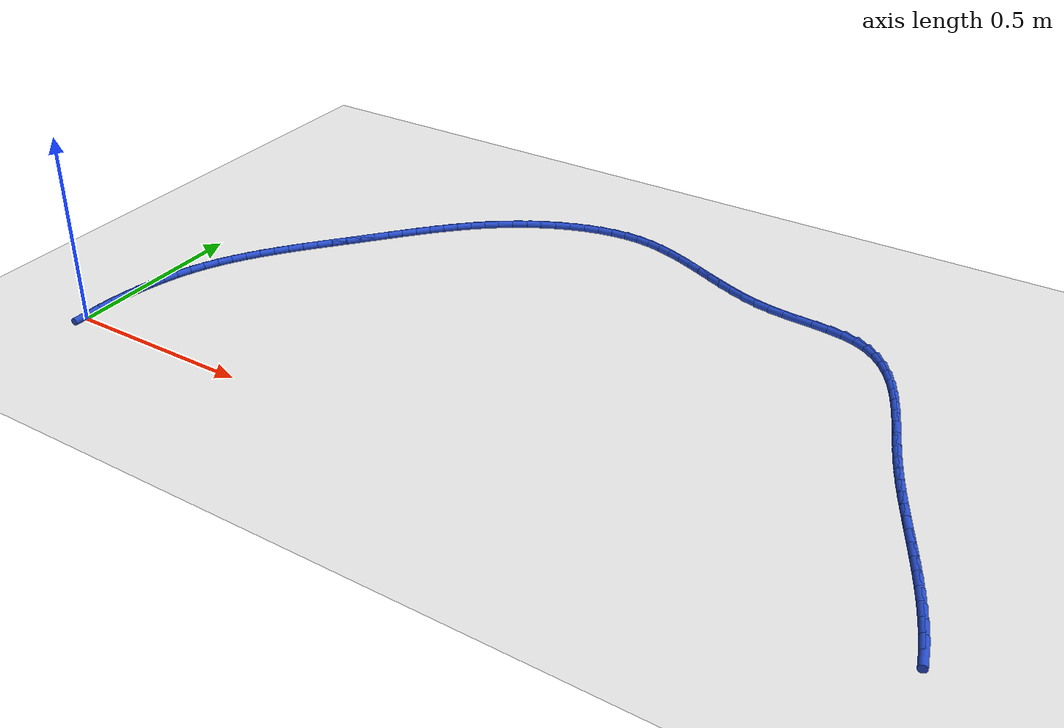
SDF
<sdf version="1.6">
 <world name="default">
  <model name="ground_plane">
   <static>1</static>
   <link name="link">
    <collision name="collision">
     <geometry><plane><normal>0 0 1</normal><size>100 100</size></plane></geometry>
     <surface><friction><ode><mu>100</mu><mu2>50</mu2></ode></friction></surface>
    </collision>
    <visual name="visual">
     <cast_shadows>0</cast_shadows>
     <geometry><plane><normal>0 0 1</normal><size>100 100</size></plane></geometry>
     <material>
      <script><uri>file://media/materials/scripts/gazebo.material</uri><name>Gazebo/WhiteGlow</name></script>
     </material>
    </visual>
   </link>
  </model>
  <model name="line">
   <link name="link_1">
    <pose>0.0005698389230910422 0.041545162783905173 0.01 0 1.57 1.5200972994835111</pose>
    <collision name="collision">
     <geometry><cylinder><radius>0.01</radius><length>0.08</length></cylinder></geometry>
    </collision>
    <visual name="visual">
     <material>
      <script><name>Gazebo/Blue</name><uri>file://media/materials/scripts/gazebo.material</uri></script>
     </material>
     <geometry><cylinder><radius>0.01</radius><length>0.08</length></cylinder></geometry>
    </visual>
   </link>
   <link name="link_2">
    <pose>0.0026732887614002825 0.08299856753516024 0.01 0 1.57 1.4808727191318776</pose>
    <collision name="collision">
     <geometry><cylinder><radius>0.01</radius><length>0.08</length></cylinder></geometry>
    </collision>
    <visual name="visual">
     <material>
      <script><name>Gazebo/Blue</name><uri>file://media/materials/scripts/gazebo.material</uri></script>
     </material>
     <geometry><cylinder><radius>0.01</radius><length>0.08</length></cylinder></geometry>
    </visual>
   </link>
   <link name="link_3">
    <pose>0.006391847719253517 0.12423946716694735 0.01 0 1.57 1.4391861110435986</pose>
    <collision name="collision">
     <geometry><cylinder><radius>0.01</radius><length>0.08</length></cylinder></geometry>
    </collision>
    <visual name="visual">
     <material>
      <script><name>Gazebo/Blue</name><uri>file://media/materials/scripts/gazebo.material</uri></script>
     </material>
     <geometry><cylinder><radius>0.01</radius><length>0.08</length></cylinder></geometry>
    </visual>
   </link>
   <link name="link_4">
    <pose>0.011807014000976564 0.1651471145924485 0.01 0 1.57 1.3948204671441984</pose>
    <collision name="collision">
     <geometry><cylinder><radius>0.01</radius><length>0.08</length></cylinder></geometry>
    </collision>
    <visual name="visual">
     <material>
      <script><name>Gazebo/Blue</name><uri>file://media/materials/scripts/gazebo.material</uri></script>
     </material>
     <geometry><cylinder><radius>0.01</radius><length>0.08</length></cylinder></geometry>
    </visual>
   </link>
   <link name="link_5">
    <pose>0.019000285810895218 0.20560076272484573 0.01 0 1.57 1.3475703724889114</pose>
    <collision name="collision">
     <geometry><cylinder><radius>0.01</radius><length>0.08</length></cylinder></geometry>
    </collision>
    <visual name="visual">
     <material>
      <script><name>Gazebo/Blue</name><uri>file://media/materials/scripts/gazebo.material</uri></script>
     </material>
     <geometry><cylinder><radius>0.01</radius><length>0.08</length></cylinder></geometry>
    </visual>
   </link>
   <link name="link_6">
    <pose>0.028053161353335274 0.24547966447732103 0.01 0 1.57 1.2972523128864661</pose>
    <collision name="collision">
     <geometry><cylinder><radius>0.01</radius><length>0.08</length></cylinder></geometry>
    </collision>
    <visual name="visual">
     <material>
      <script><name>Gazebo/Blue</name><uri>file://media/materials/scripts/gazebo.material</uri></script>
     </material>
     <geometry><cylinder><radius>0.01</radius><length>0.08</length></cylinder></geometry>
    </visual>
   </link>
   <link name="link_7">
    <pose>0.03904713883262256 0.28466307276305663 0.01 0 1.57 1.2437181974995577</pose>
    <collision name="collision">
     <geometry><cylinder><radius>0.01</radius><length>0.08</length></cylinder></geometry>
    </collision>
    <visual name="visual">
     <material>
      <script><name>Gazebo/Blue</name><uri>file://media/materials/scripts/gazebo.material</uri></script>
     </material>
     <geometry><cylinder><radius>0.01</radius><length>0.08</length></cylinder></geometry>
    </visual>
   </link>
   <link name="link_8">
    <pose>0.05206371645308286 0.32303024049523443 0.01 0 1.57 1.1868720875243683</pose>
    <collision name="collision">
     <geometry><cylinder><radius>0.01</radius><length>0.08</length></cylinder></geometry>
    </collision>
    <visual name="visual">
     <material>
      <script><name>Gazebo/Blue</name><uri>file://media/materials/scripts/gazebo.material</uri></script>
     </material>
     <geometry><cylinder><radius>0.01</radius><length>0.08</length></cylinder></geometry>
    </visual>
   </link>
   <link name="link_9">
    <pose>0.067184392419042 0.36046042058703653 0.01 0 1.57 1.1281532758197523</pose>
    <collision name="collision">
     <geometry><cylinder><radius>0.01</radius><length>0.08</length></cylinder></geometry>
    </collision>
    <visual name="visual">
     <material>
      <script><name>Gazebo/Blue</name><uri>file://media/materials/scripts/gazebo.material</uri></script>
     </material>
     <geometry><cylinder><radius>0.01</radius><length>0.08</length></cylinder></geometry>
    </visual>
   </link>
   <link name="link_10">
    <pose>0.08444208644708855 0.3968680285939213 0.01 0 1.57 1.0739623734600916</pose>
    <collision name="collision">
     <geometry><cylinder><radius>0.01</radius><length>0.08</length></cylinder></geometry>
    </collision>
    <visual name="visual">
     <material>
      <script><name>Gazebo/Blue</name><uri>file://media/materials/scripts/gazebo.material</uri></script>
     </material>
     <geometry><cylinder><radius>0.01</radius><length>0.08</length></cylinder></geometry>
    </visual>
   </link>
   <link name="link_11">
    <pose>0.10366266211209786 0.43231735384019665 0.01 0 1.57 1.0262000147101982</pose>
    <collision name="collision">
     <geometry><cylinder><radius>0.01</radius><length>0.08</length></cylinder></geometry>
    </collision>
    <visual name="visual">
     <material>
      <script><name>Gazebo/Blue</name><uri>file://media/materials/scripts/gazebo.material</uri></script>
     </material>
     <geometry><cylinder><radius>0.01</radius><length>0.08</length></cylinder></geometry>
    </visual>
   </link>
   <link name="link_12">
    <pose>0.12461682725414372 0.4669126091114115 0.01 0 1.57 0.9849473850095529</pose>
    <collision name="collision">
     <geometry><cylinder><radius>0.01</radius><length>0.08</length></cylinder></geometry>
    </collision>
    <visual name="visual">
     <material>
      <script><name>Gazebo/Blue</name><uri>file://media/materials/scripts/gazebo.material</uri></script>
     </material>
     <geometry><cylinder><radius>0.01</radius><length>0.08</length></cylinder></geometry>
    </visual>
   </link>
   <link name="link_13">
    <pose>0.1470752892221213 0.5007580075486453 0.01 0 1.57 0.9501609036371669</pose>
    <collision name="collision">
     <geometry><cylinder><radius>0.01</radius><length>0.08</length></cylinder></geometry>
    </collision>
    <visual name="visual">
     <material>
      <script><name>Gazebo/Blue</name><uri>file://media/materials/scripts/gazebo.material</uri></script>
     </material>
     <geometry><cylinder><radius>0.01</radius><length>0.08</length></cylinder></geometry>
    </visual>
   </link>
   <link name="link_14">
    <pose>0.17080875536492568 0.533957762292977 0.01 0 1.57 0.9217250289088585</pose>
    <collision name="collision">
     <geometry><cylinder><radius>0.01</radius><length>0.08</length></cylinder></geometry>
    </collision>
    <visual name="visual">
     <material>
      <script><name>Gazebo/Blue</name><uri>file://media/materials/scripts/gazebo.material</uri></script>
     </material>
     <geometry><cylinder><radius>0.01</radius><length>0.08</length></cylinder></geometry>
    </visual>
   </link>
   <link name="link_15">
    <pose>0.19558793303145225 0.5666160864854863 0.01 0 1.57 0.8994955455293171</pose>
    <collision name="collision">
     <geometry><cylinder><radius>0.01</radius><length>0.08</length></cylinder></geometry>
    </collision>
    <visual name="visual">
     <material>
      <script><name>Gazebo/Blue</name><uri>file://media/materials/scripts/gazebo.material</uri></script>
     </material>
     <geometry><cylinder><radius>0.01</radius><length>0.08</length></cylinder></geometry>
    </visual>
   </link>
   <link name="link_16">
    <pose>0.22118352957059623 0.5988371932672524 0.01 0 1.57 0.8833324995591779</pose>
    <collision name="collision">
     <geometry><cylinder><radius>0.01</radius><length>0.08</length></cylinder></geometry>
    </collision>
    <visual name="visual">
     <material>
      <script><name>Gazebo/Blue</name><uri>file://media/materials/scripts/gazebo.material</uri></script>
     </material>
     <geometry><cylinder><radius>0.01</radius><length>0.08</length></cylinder></geometry>
    </visual>
   </link>
   <link name="link_17">
    <pose>0.24736625233125267 0.6307252957793547 0.01 0 1.57 0.8731237472667347</pose>
    <collision name="collision">
     <geometry><cylinder><radius>0.01</radius><length>0.08</length></cylinder></geometry>
    </collision>
    <visual name="visual">
     <material>
      <script><name>Gazebo/Blue</name><uri>file://media/materials/scripts/gazebo.material</uri></script>
     </material>
     <geometry><cylinder><radius>0.01</radius><length>0.08</length></cylinder></geometry>
    </visual>
   </link>
   <link name="link_18">
    <pose>0.2739068086623168 0.6623846071628722 0.01 0 1.57 0.8688007347777467</pose>
    <collision name="collision">
     <geometry><cylinder><radius>0.01</radius><length>0.08</length></cylinder></geometry>
    </collision>
    <visual name="visual">
     <material>
      <script><name>Gazebo/Blue</name><uri>file://media/materials/scripts/gazebo.material</uri></script>
     </material>
     <geometry><cylinder><radius>0.01</radius><length>0.08</length></cylinder></geometry>
    </visual>
   </link>
   <link name="link_19">
    <pose>0.300575905912684 0.6939193405588848 0.01 0 1.57 0.870348034622025</pose>
    <collision name="collision">
     <geometry><cylinder><radius>0.01</radius><length>0.08</length></cylinder></geometry>
    </collision>
    <visual name="visual">
     <material>
      <script><name>Gazebo/Blue</name><uri>file://media/materials/scripts/gazebo.material</uri></script>
     </material>
     <geometry><cylinder><radius>0.01</radius><length>0.08</length></cylinder></geometry>
    </visual>
   </link>
   <link name="link_20">
    <pose>0.32714425179915124 0.7254337088915553 0.01 0 1.57 0.8757457678776526</pose>
    <collision name="collision">
     <geometry><cylinder><radius>0.01</radius><length>0.08</length></cylinder></geometry>
    </collision>
    <visual name="visual">
     <material>
      <script><name>Gazebo/Blue</name><uri>file://media/materials/scripts/gazebo.material</uri></script>
     </material>
     <geometry><cylinder><radius>0.01</radius><length>0.08</length></cylinder></geometry>
    </visual>
   </link>
   <link name="link_21">
    <pose>0.35345647827845283 0.7569883390534942 0.01 0 1.57 0.8771884511652528</pose>
    <collision name="collision">
     <geometry><cylinder><radius>0.01</radius><length>0.08</length></cylinder></geometry>
    </collision>
    <visual name="visual">
     <material>
      <script><name>Gazebo/Blue</name><uri>file://media/materials/scripts/gazebo.material</uri></script>
     </material>
     <geometry><cylinder><radius>0.01</radius><length>0.08</length></cylinder></geometry>
    </visual>
   </link>
   <link name="link_22">
    <pose>0.37963790560141136 0.7884783629812221 0.01 0 1.57 0.87276877056563</pose>
    <collision name="collision">
     <geometry><cylinder><radius>0.01</radius><length>0.08</length></cylinder></geometry>
    </collision>
    <visual name="visual">
     <material>
      <script><name>Gazebo/Blue</name><uri>file://media/materials/scripts/gazebo.material</uri></script>
     </material>
     <geometry><cylinder><radius>0.01</radius><length>0.08</length></cylinder></geometry>
    </visual>
   </link>
   <link name="link_23">
    <pose>0.40588046252908605 0.8197596399635972 0.01 0 1.57 0.8624391260932672</pose>
    <collision name="collision">
     <geometry><cylinder><radius>0.01</radius><length>0.08</length></cylinder></geometry>
    </collision>
    <visual name="visual">
     <material>
      <script><name>Gazebo/Blue</name><uri>file://media/materials/scripts/gazebo.material</uri></script>
     </material>
     <geometry><cylinder><radius>0.01</radius><length>0.08</length></cylinder></geometry>
    </visual>
   </link>
   <link name="link_24">
    <pose>0.4323760778225356 0.8506880292894768 0.01 0 1.57 0.8461675748330334</pose>
    <collision name="collision">
     <geometry><cylinder><radius>0.01</radius><length>0.08</length></cylinder></geometry>
    </collision>
    <visual name="visual">
     <material>
      <script><name>Gazebo/Blue</name><uri>file://media/materials/scripts/gazebo.material</uri></script>
     </material>
     <geometry><cylinder><radius>0.01</radius><length>0.08</length></cylinder></geometry>
    </visual>
   </link>
   <link name="link_25">
    <pose>0.4593166802428191 0.8811193902477193 0.01 0 1.57 0.82394907151662</pose>
    <collision name="collision">
     <geometry><cylinder><radius>0.01</radius><length>0.08</length></cylinder></geometry>
    </collision>
    <visual name="visual">
     <material>
      <script><name>Gazebo/Blue</name><uri>file://media/materials/scripts/gazebo.material</uri></script>
     </material>
     <geometry><cylinder><radius>0.01</radius><length>0.08</length></cylinder></geometry>
    </visual>
   </link>
   <link name="link_26">
    <pose>0.48689419855099547 0.9109095821271822 0.01 0 1.57 0.795822905978151</pose>
    <collision name="collision">
     <geometry><cylinder><radius>0.01</radius><length>0.08</length></cylinder></geometry>
    </collision>
    <visual name="visual">
     <material>
      <script><name>Gazebo/Blue</name><uri>file://media/materials/scripts/gazebo.material</uri></script>
     </material>
     <geometry><cylinder><radius>0.01</radius><length>0.08</length></cylinder></geometry>
    </visual>
   </link>
   <link name="link_27">
    <pose>0.5153005615081233 0.9399144642167233 0.01 0 1.57 0.7618956323345664</pose>
    <collision name="collision">
     <geometry><cylinder><radius>0.01</radius><length>0.08</length></cylinder></geometry>
    </collision>
    <visual name="visual">
     <material>
      <script><name>Gazebo/Blue</name><uri>file://media/materials/scripts/gazebo.material</uri></script>
     </material>
     <geometry><cylinder><radius>0.01</radius><length>0.08</length></cylinder></geometry>
    </visual>
   </link>
   <link name="link_28">
    <pose>0.5447276978752621 0.9679898958052006 0.01 0 1.57 0.7223677445528075</pose>
    <collision name="collision">
     <geometry><cylinder><radius>0.01</radius><length>0.08</length></cylinder></geometry>
    </collision>
    <visual name="visual">
     <material>
      <script><name>Gazebo/Blue</name><uri>file://media/materials/scripts/gazebo.material</uri></script>
     </material>
     <geometry><cylinder><radius>0.01</radius><length>0.08</length></cylinder></geometry>
    </visual>
   </link>
   <link name="link_29">
    <pose>0.5753675364134704 0.994991736181472 0.01 0 1.57 0.6775609067274079</pose>
    <collision name="collision">
     <geometry><cylinder><radius>0.01</radius><length>0.08</length></cylinder></geometry>
    </collision>
    <visual name="visual">
     <material>
      <script><name>Gazebo/Blue</name><uri>file://media/materials/scripts/gazebo.material</uri></script>
     </material>
     <geometry><cylinder><radius>0.01</radius><length>0.08</length></cylinder></geometry>
    </visual>
   </link>
   <link name="link_30">
    <pose>0.6074120058838071 1.0207758446343944 0.01 0 1.57 0.627940937626922</pose>
    <collision name="collision">
     <geometry><cylinder><radius>0.01</radius><length>0.08</length></cylinder></geometry>
    </collision>
    <visual name="visual">
     <material>
      <script><name>Gazebo/Blue</name><uri>file://media/materials/scripts/gazebo.material</uri></script>
     </material>
     <geometry><cylinder><radius>0.01</radius><length>0.08</length></cylinder></geometry>
    </visual>
   </link>
   <link name="link_31">
    <pose>0.6410530350473314 1.0451980804528267 0.01 0 1.57 0.5745217246978148</pose>
    <collision name="collision">
     <geometry><cylinder><radius>0.01</radius><length>0.08</length></cylinder></geometry>
    </collision>
    <visual name="visual">
     <material>
      <script><name>Gazebo/Blue</name><uri>file://media/materials/scripts/gazebo.material</uri></script>
     </material>
     <geometry><cylinder><radius>0.01</radius><length>0.08</length></cylinder></geometry>
    </visual>
   </link>
   <link name="link_32">
    <pose>0.6764116504908415 1.0680880661145835 0.01 0 1.57 0.5190564999546649</pose>
    <collision name="collision">
     <geometry><cylinder><radius>0.01</radius><length>0.08</length></cylinder></geometry>
    </collision>
    <visual name="visual">
     <material>
      <script><name>Gazebo/Blue</name><uri>file://media/materials/scripts/gazebo.material</uri></script>
     </material>
     <geometry><cylinder><radius>0.01</radius><length>0.08</length></cylinder></geometry>
    </visual>
   </link>
   <link name="link_33">
    <pose>0.7132919896818282 1.0891581616858304 0.01 0 1.57 0.46093582858358545</pose>
    <collision name="collision">
     <geometry><cylinder><radius>0.01</radius><length>0.08</length></cylinder></geometry>
    </collision>
    <visual name="visual">
     <material>
      <script><name>Gazebo/Blue</name><uri>file://media/materials/scripts/gazebo.material</uri></script>
     </material>
     <geometry><cylinder><radius>0.01</radius><length>0.08</length></cylinder></geometry>
    </visual>
   </link>
   <link name="link_34">
    <pose>0.7514096939868172 1.1080879799227483 0.01 0 1.57 0.39892084222685315</pose>
    <collision name="collision">
     <geometry><cylinder><radius>0.01</radius><length>0.08</length></cylinder></geometry>
    </collision>
    <visual name="visual">
     <material>
      <script><name>Gazebo/Blue</name><uri>file://media/materials/scripts/gazebo.material</uri></script>
     </material>
     <geometry><cylinder><radius>0.01</radius><length>0.08</length></cylinder></geometry>
    </visual>
   </link>
   <link name="link_35">
    <pose>0.7904804007656524 1.1245571320988768 0.01 0 1.57 0.33171925631393967</pose>
    <collision name="collision">
     <geometry><cylinder><radius>0.01</radius><length>0.08</length></cylinder></geometry>
    </collision>
    <visual name="visual">
     <material>
      <script><name>Gazebo/Blue</name><uri>file://media/materials/scripts/gazebo.material</uri></script>
     </material>
     <geometry><cylinder><radius>0.01</radius><length>0.08</length></cylinder></geometry>
    </visual>
   </link>
   <link name="link_36">
    <pose>0.8302197473781776 1.1382452294877552 0.01 0 1.57 0.2579717170674096</pose>
    <collision name="collision">
     <geometry><cylinder><radius>0.01</radius><length>0.08</length></cylinder></geometry>
    </collision>
    <visual name="visual">
     <material>
      <script><name>Gazebo/Blue</name><uri>file://media/materials/scripts/gazebo.material</uri></script>
     </material>
     <geometry><cylinder><radius>0.01</radius><length>0.08</length></cylinder></geometry>
    </visual>
   </link>
   <link name="link_37">
    <pose>0.870343371184237 1.1488318833629232 0.01 0 1.57 0.1762762829172391</pose>
    <collision name="collision">
     <geometry><cylinder><radius>0.01</radius><length>0.08</length></cylinder></geometry>
    </collision>
    <visual name="visual">
     <material>
      <script><name>Gazebo/Blue</name><uri>file://media/materials/scripts/gazebo.material</uri></script>
     </material>
     <geometry><cylinder><radius>0.01</radius><length>0.08</length></cylinder></geometry>
    </visual>
   </link>
   <link name="link_38">
    <pose>0.9105669095436737 1.1559967049979187 0.01 0 1.57 0.08527418068000801</pose>
    <collision name="collision">
     <geometry><cylinder><radius>0.01</radius><length>0.08</length></cylinder></geometry>
    </collision>
    <visual name="visual">
     <material>
      <script><name>Gazebo/Blue</name><uri>file://media/materials/scripts/gazebo.material</uri></script>
     </material>
     <geometry><cylinder><radius>0.01</radius><length>0.08</length></cylinder></geometry>
    </visual>
   </link>
   <link name="link_39">
    <pose>0.9506059998163322 1.1594193056662825 0.01 0 1.57 -0.016172572762518062</pose>
    <collision name="collision">
     <geometry><cylinder><radius>0.01</radius><length>0.08</length></cylinder></geometry>
    </collision>
    <visual name="visual">
     <material>
      <script><name>Gazebo/Blue</name><uri>file://media/materials/scripts/gazebo.material</uri></script>
     </material>
     <geometry><cylinder><radius>0.01</radius><length>0.08</length></cylinder></geometry>
    </visual>
   </link>
   <link name="link_40">
    <pose>0.9901762793620563 1.1587792966415529 0.01 0 1.57 -0.1256354903825792</pose>
    <collision name="collision">
     <geometry><cylinder><radius>0.01</radius><length>0.08</length></cylinder></geometry>
    </collision>
    <visual name="visual">
     <material>
      <script><name>Gazebo/Blue</name><uri>file://media/materials/scripts/gazebo.material</uri></script>
     </material>
     <geometry><cylinder><radius>0.01</radius><length>0.08</length></cylinder></geometry>
    </visual>
   </link>
   <link name="link_41">
    <pose>1.0290447640574936 1.1538701793311599 0.01 0 1.57 -0.22454292599738765</pose>
    <collision name="collision">
     <geometry><cylinder><radius>0.01</radius><length>0.08</length></cylinder></geometry>
    </collision>
    <visual name="visual">
     <material>
      <script><name>Gazebo/Blue</name><uri>file://media/materials/scripts/gazebo.material</uri></script>
     </material>
     <geometry><cylinder><radius>0.01</radius><length>0.08</length></cylinder></geometry>
    </visual>
   </link>
   <link name="link_42">
    <pose>1.0672732975342132 1.1451389962443619 0.01 0 1.57 -0.304692625692873</pose>
    <collision name="collision">
     <geometry><cylinder><radius>0.01</radius><length>0.08</length></cylinder></geometry>
    </collision>
    <visual name="visual">
     <material>
      <script><name>Gazebo/Blue</name><uri>file://media/materials/scripts/gazebo.material</uri></script>
     </material>
     <geometry><cylinder><radius>0.01</radius><length>0.08</length></cylinder></geometry>
    </visual>
   </link>
   <link name="link_43">
    <pose>1.1050286930685729 1.1332654748265154 0.01 0 1.57 -0.3655983201610638</pose>
    <collision name="collision">
     <geometry><cylinder><radius>0.01</radius><length>0.08</length></cylinder></geometry>
    </collision>
    <visual name="visual">
     <material>
      <script><name>Gazebo/Blue</name><uri>file://media/materials/scripts/gazebo.material</uri></script>
     </material>
     <geometry><cylinder><radius>0.01</radius><length>0.08</length></cylinder></geometry>
    </visual>
   </link>
   <link name="link_44">
    <pose>1.1424778916945804 1.1189296257218084 0.01 0 1.57 -0.4077908570501717</pose>
    <collision name="collision">
     <geometry><cylinder><radius>0.01</radius><length>0.08</length></cylinder></geometry>
    </collision>
    <visual name="visual">
     <material>
      <script><name>Gazebo/Blue</name><uri>file://media/materials/scripts/gazebo.material</uri></script>
     </material>
     <geometry><cylinder><radius>0.01</radius><length>0.08</length></cylinder></geometry>
    </visual>
   </link>
   <link name="link_45">
    <pose>1.1797878344462438 1.1028114595744296 0.01 0 1.57 -0.4321366338775718</pose>
    <collision name="collision">
     <geometry><cylinder><radius>0.01</radius><length>0.08</length></cylinder></geometry>
    </collision>
    <visual name="visual">
     <material>
      <script><name>Gazebo/Blue</name><uri>file://media/materials/scripts/gazebo.material</uri></script>
     </material>
     <geometry><cylinder><radius>0.01</radius><length>0.08</length></cylinder></geometry>
    </visual>
   </link>
   <link name="link_46">
    <pose>1.2171254623575711 1.0855909870285672 0.01 0 1.57 -0.4394178192543434</pose>
    <collision name="collision">
     <geometry><cylinder><radius>0.01</radius><length>0.08</length></cylinder></geometry>
    </collision>
    <visual name="visual">
     <material>
      <script><name>Gazebo/Blue</name><uri>file://media/materials/scripts/gazebo.material</uri></script>
     </material>
     <geometry><cylinder><radius>0.01</radius><length>0.08</length></cylinder></geometry>
    </visual>
   </link>
   <link name="link_47">
    <pose>1.2546577164625718 1.0679482187284095 0.01 0 1.57 -0.43013408966286065</pose>
    <collision name="collision">
     <geometry><cylinder><radius>0.01</radius><length>0.08</length></cylinder></geometry>
    </collision>
    <visual name="visual">
     <material>
      <script><name>Gazebo/Blue</name><uri>file://media/materials/scripts/gazebo.material</uri></script>
     </material>
     <geometry><cylinder><radius>0.01</radius><length>0.08</length></cylinder></geometry>
    </visual>
   </link>
   <link name="link_48">
    <pose>1.2925515377952521 1.050563165318145 0.01 0 1.57 -0.40446547660785526</pose>
    <collision name="collision">
     <geometry><cylinder><radius>0.01</radius><length>0.08</length></cylinder></geometry>
    </collision>
    <visual name="visual">
     <material>
      <script><name>Gazebo/Blue</name><uri>file://media/materials/scripts/gazebo.material</uri></script>
     </material>
     <geometry><cylinder><radius>0.01</radius><length>0.08</length></cylinder></geometry>
    </visual>
   </link>
   <link name="link_49">
    <pose>1.330973867389621 1.0341158374419626 0.01 0 1.57 -0.362361269226547</pose>
    <collision name="collision">
     <geometry><cylinder><radius>0.01</radius><length>0.08</length></cylinder></geometry>
    </collision>
    <visual name="visual">
     <material>
      <script><name>Gazebo/Blue</name><uri>file://media/materials/scripts/gazebo.material</uri></script>
     </material>
     <geometry><cylinder><radius>0.01</radius><length>0.08</length></cylinder></geometry>
    </visual>
   </link>
   <link name="link_50">
    <pose>1.370091646279687 1.0192862457440495 0.01 0 1.57 -0.30375150003740936</pose>
    <collision name="collision">
     <geometry><cylinder><radius>0.01</radius><length>0.08</length></cylinder></geometry>
    </collision>
    <visual name="visual">
     <material>
      <script><name>Gazebo/Blue</name><uri>file://media/materials/scripts/gazebo.material</uri></script>
     </material>
     <geometry><cylinder><radius>0.01</radius><length>0.08</length></cylinder></geometry>
    </visual>
   </link>
   <link name="link_51">
    <pose>1.410071815499458 1.006754400868595 0.01 0 1.57 -0.22888973912910016</pose>
    <collision name="collision">
     <geometry><cylinder><radius>0.01</radius><length>0.08</length></cylinder></geometry>
    </collision>
    <visual name="visual">
     <material>
      <script><name>Gazebo/Blue</name><uri>file://media/materials/scripts/gazebo.material</uri></script>
     </material>
     <geometry><cylinder><radius>0.01</radius><length>0.08</length></cylinder></geometry>
    </visual>
   </link>
   <link name="link_52">
    <pose>1.4510813160829426 0.9972003134597871 0.01 0 1.57 -0.14556922707870218</pose>
    <collision name="collision">
     <geometry><cylinder><radius>0.01</radius><length>0.08</length></cylinder></geometry>
    </collision>
    <visual name="visual">
     <material>
      <script><name>Gazebo/Blue</name><uri>file://media/materials/scripts/gazebo.material</uri></script>
     </material>
     <geometry><cylinder><radius>0.01</radius><length>0.08</length></cylinder></geometry>
    </visual>
   </link>
   <link name="link_53">
    <pose>1.4931699707252928 0.9910298540037658 0.01 0 1.57 -0.09105831924694072</pose>
    <collision name="collision">
     <geometry><cylinder><radius>0.01</radius><length>0.08</length></cylinder></geometry>
    </collision>
    <visual name="visual">
     <material>
      <script><name>Gazebo/Blue</name><uri>file://media/materials/scripts/gazebo.material</uri></script>
     </material>
     <geometry><cylinder><radius>0.01</radius><length>0.08</length></cylinder></geometry>
    </visual>
   </link>
   <link name="link_54">
    <pose>1.535743990738294 0.9871423848848361 0.01 0 1.57 -0.07607122398688305</pose>
    <collision name="collision">
     <geometry><cylinder><radius>0.01</radius><length>0.08</length></cylinder></geometry>
    </collision>
    <visual name="visual">
     <material>
      <script><name>Gazebo/Blue</name><uri>file://media/materials/scripts/gazebo.material</uri></script>
     </material>
     <geometry><cylinder><radius>0.01</radius><length>0.08</length></cylinder></geometry>
    </visual>
   </link>
   <link name="link_55">
    <pose>1.5779896640353046 0.9839224914182927 0.01 0 1.57 -0.10106160086372763</pose>
    <collision name="collision">
     <geometry><cylinder><radius>0.01</radius><length>0.08</length></cylinder></geometry>
    </collision>
    <visual name="visual">
     <material>
      <script><name>Gazebo/Blue</name><uri>file://media/materials/scripts/gazebo.material</uri></script>
     </material>
     <geometry><cylinder><radius>0.01</radius><length>0.08</length></cylinder></geometry>
    </visual>
   </link>
   <link name="link_56">
    <pose>1.6190930881992849 0.9797543134110152 0.01 0 1.57 -0.1703083232349127</pose>
    <collision name="collision">
     <geometry><cylinder><radius>0.01</radius><length>0.08</length></cylinder></geometry>
    </collision>
    <visual name="visual">
     <material>
      <script><name>Gazebo/Blue</name><uri>file://media/materials/scripts/gazebo.material</uri></script>
     </material>
     <geometry><cylinder><radius>0.01</radius><length>0.08</length></cylinder></geometry>
    </visual>
   </link>
   <link name="link_57">
    <pose>1.6582403608131935 0.9730219906698818 0.01 0 1.57 -0.29143566190404235</pose>
    <collision name="collision">
     <geometry><cylinder><radius>0.01</radius><length>0.08</length></cylinder></geometry>
    </collision>
    <visual name="visual">
     <material>
      <script><name>Gazebo/Blue</name><uri>file://media/materials/scripts/gazebo.material</uri></script>
     </material>
     <geometry><cylinder><radius>0.01</radius><length>0.08</length></cylinder></geometry>
    </visual>
   </link>
   <link name="link_58">
    <pose>1.6946175794599911 0.9621096630017723 0.01 0 1.57 -0.467204908797201</pose>
    <collision name="collision">
     <geometry><cylinder><radius>0.01</radius><length>0.08</length></cylinder></geometry>
    </collision>
    <visual name="visual">
     <material>
      <script><name>Gazebo/Blue</name><uri>file://media/materials/scripts/gazebo.material</uri></script>
     </material>
     <geometry><cylinder><radius>0.01</radius><length>0.08</length></cylinder></geometry>
    </visual>
   </link>
   <link name="link_59">
    <pose>1.7274779039952877 0.9455331222283423 0.01 0 1.57 -0.651654203072232</pose>
    <collision name="collision">
     <geometry><cylinder><radius>0.01</radius><length>0.08</length></cylinder></geometry>
    </collision>
    <visual name="visual">
     <material>
      <script><name>Gazebo/Blue</name><uri>file://media/materials/scripts/gazebo.material</uri></script>
     </material>
     <geometry><cylinder><radius>0.01</radius><length>0.08</length></cylinder></geometry>
    </visual>
   </link>
   <link name="link_60">
    <pose>1.7567755243015204 0.9231843738276477 0.01 0 1.57 -0.8097327409211476</pose>
    <collision name="collision">
     <geometry><cylinder><radius>0.01</radius><length>0.08</length></cylinder></geometry>
    </collision>
    <visual name="visual">
     <material>
      <script><name>Gazebo/Blue</name><uri>file://media/materials/scripts/gazebo.material</uri></script>
     </material>
     <geometry><cylinder><radius>0.01</radius><length>0.08</length></cylinder></geometry>
    </visual>
   </link>
   <link name="link_61">
    <pose>1.7828821956866072 0.895775158836842 0.01 0 1.57 -0.9378043812204923</pose>
    <collision name="collision">
     <geometry><cylinder><radius>0.01</radius><length>0.08</length></cylinder></geometry>
    </collision>
    <visual name="visual">
     <material>
      <script><name>Gazebo/Blue</name><uri>file://media/materials/scripts/gazebo.material</uri></script>
     </material>
     <geometry><cylinder><radius>0.01</radius><length>0.08</length></cylinder></geometry>
    </visual>
   </link>
   <link name="link_62">
    <pose>1.806175227324677 0.8640281212590505 0.01 0 1.57 -1.0379092024082466</pose>
    <collision name="collision">
     <geometry><cylinder><radius>0.01</radius><length>0.08</length></cylinder></geometry>
    </collision>
    <visual name="visual">
     <material>
      <script><name>Gazebo/Blue</name><uri>file://media/materials/scripts/gazebo.material</uri></script>
     </material>
     <geometry><cylinder><radius>0.01</radius><length>0.08</length></cylinder></geometry>
    </visual>
   </link>
   <link name="link_63">
    <pose>1.8270319283898602 0.8286659050973975 0.01 0 1.57 -1.1140671984465251</pose>
    <collision name="collision">
     <geometry><cylinder><radius>0.01</radius><length>0.08</length></cylinder></geometry>
    </collision>
    <visual name="visual">
     <material>
      <script><name>Gazebo/Blue</name><uri>file://media/materials/scripts/gazebo.material</uri></script>
     </material>
     <geometry><cylinder><radius>0.01</radius><length>0.08</length></cylinder></geometry>
    </visual>
   </link>
   <link name="link_64">
    <pose>1.8458296080562855 0.7904111543550083 0.01 0 1.57 -1.1702780175155891</pose>
    <collision name="collision">
     <geometry><cylinder><radius>0.01</radius><length>0.08</length></cylinder></geometry>
    </collision>
    <visual name="visual">
     <material>
      <script><name>Gazebo/Blue</name><uri>file://media/materials/scripts/gazebo.material</uri></script>
     </material>
     <geometry><cylinder><radius>0.01</radius><length>0.08</length></cylinder></geometry>
    </visual>
   </link>
   <link name="link_65">
    <pose>1.8629455754980824 0.7499865130350073 0.01 0 1.57 -1.2097326977177658</pose>
    <collision name="collision">
     <geometry><cylinder><radius>0.01</radius><length>0.08</length></cylinder></geometry>
    </collision>
    <visual name="visual">
     <material>
      <script><name>Gazebo/Blue</name><uri>file://media/materials/scripts/gazebo.material</uri></script>
     </material>
     <geometry><cylinder><radius>0.01</radius><length>0.08</length></cylinder></geometry>
    </visual>
   </link>
   <link name="link_66">
    <pose>1.8787571398893825 0.7081146251405196 0.01 0 1.57 -1.2346298351911302</pose>
    <collision name="collision">
     <geometry><cylinder><radius>0.01</radius><length>0.08</length></cylinder></geometry>
    </collision>
    <visual name="visual">
     <material>
      <script><name>Gazebo/Blue</name><uri>file://media/materials/scripts/gazebo.material</uri></script>
     </material>
     <geometry><cylinder><radius>0.01</radius><length>0.08</length></cylinder></geometry>
    </visual>
   </link>
   <link name="link_67">
    <pose>1.8936416104043123 0.6655181346746698 0.01 0 1.57 -1.2461919962147716</pose>
    <collision name="collision">
     <geometry><cylinder><radius>0.01</radius><length>0.08</length></cylinder></geometry>
    </collision>
    <visual name="visual">
     <material>
      <script><name>Gazebo/Blue</name><uri>file://media/materials/scripts/gazebo.material</uri></script>
     </material>
     <geometry><cylinder><radius>0.01</radius><length>0.08</length></cylinder></geometry>
    </visual>
   </link>
   <link name="link_68">
    <pose>1.907976296217004 0.6229196856405828 0.01 0 1.57 -1.2446903861384637</pose>
    <collision name="collision">
     <geometry><cylinder><radius>0.01</radius><length>0.08</length></cylinder></geometry>
    </collision>
    <visual name="visual">
     <material>
      <script><name>Gazebo/Blue</name><uri>file://media/materials/scripts/gazebo.material</uri></script>
     </material>
     <geometry><cylinder><radius>0.01</radius><length>0.08</length></cylinder></geometry>
    </visual>
   </link>
   <link name="link_69">
    <pose>1.9221385065015855 0.5810419220413836 0.01 0 1.57 -1.2297043760029835</pose>
    <collision name="collision">
     <geometry><cylinder><radius>0.01</radius><length>0.08</length></cylinder></geometry>
    </collision>
    <visual name="visual">
     <material>
      <script><name>Gazebo/Blue</name><uri>file://media/materials/scripts/gazebo.material</uri></script>
     </material>
     <geometry><cylinder><radius>0.01</radius><length>0.08</length></cylinder></geometry>
    </visual>
   </link>
   <link name="link_70">
    <pose>1.9364989678412887 0.5405860367387119 0.01 0 1.57 -1.2078678131129432</pose>
    <collision name="collision">
     <geometry><cylinder><radius>0.01</radius><length>0.08</length></cylinder></geometry>
    </collision>
    <visual name="visual">
     <material>
      <script><name>Gazebo/Blue</name><uri>file://media/materials/scripts/gazebo.material</uri></script>
     </material>
     <geometry><cylinder><radius>0.01</radius><length>0.08</length></cylinder></geometry>
    </visual>
   </link>
   <link name="link_71">
    <pose>1.9512619036106462 0.5017106271416624 0.01 0 1.57 -1.1877509499258085</pose>
    <collision name="collision">
     <geometry><cylinder><radius>0.01</radius><length>0.08</length></cylinder></geometry>
    </collision>
    <visual name="visual">
     <material>
      <script><name>Gazebo/Blue</name><uri>file://media/materials/scripts/gazebo.material</uri></script>
     </material>
     <geometry><cylinder><radius>0.01</radius><length>0.08</length></cylinder></geometry>
    </visual>
   </link>
   <link name="link_72">
    <pose>1.9664561839854646 0.46400285513588974 0.01 0 1.57 -1.170540226670106</pose>
    <collision name="collision">
     <geometry><cylinder><radius>0.01</radius><length>0.08</length></cylinder></geometry>
    </collision>
    <visual name="visual">
     <material>
      <script><name>Gazebo/Blue</name><uri>file://media/materials/scripts/gazebo.material</uri></script>
     </material>
     <geometry><cylinder><radius>0.01</radius><length>0.08</length></cylinder></geometry>
    </visual>
   </link>
   <link name="link_73">
    <pose>1.9821023250644019 0.4270226586015313 0.01 0 1.57 -1.156889265317586</pose>
    <collision name="collision">
     <geometry><cylinder><radius>0.01</radius><length>0.08</length></cylinder></geometry>
    </collision>
    <visual name="visual">
     <material>
      <script><name>Gazebo/Blue</name><uri>file://media/materials/scripts/gazebo.material</uri></script>
     </material>
     <geometry><cylinder><radius>0.01</radius><length>0.08</length></cylinder></geometry>
    </visual>
   </link>
   <link name="link_74">
    <pose>1.9982208429461146 0.3903299754187243 0.01 0 1.57 -1.1472416754130788</pose>
    <collision name="collision">
     <geometry><cylinder><radius>0.01</radius><length>0.08</length></cylinder></geometry>
    </collision>
    <visual name="visual">
     <material>
      <script><name>Gazebo/Blue</name><uri>file://media/materials/scripts/gazebo.material</uri></script>
     </material>
     <geometry><cylinder><radius>0.01</radius><length>0.08</length></cylinder></geometry>
    </visual>
   </link>
   <link name="link_75">
    <pose>2.014832253729259 0.35348474346760705 0.01 0 1.57 -1.1418934570154329</pose>
    <collision name="collision">
     <geometry><cylinder><radius>0.01</radius><length>0.08</length></cylinder></geometry>
    </collision>
    <visual name="visual">
     <material>
      <script><name>Gazebo/Blue</name><uri>file://media/materials/scripts/gazebo.material</uri></script>
     </material>
     <geometry><cylinder><radius>0.01</radius><length>0.08</length></cylinder></geometry>
    </visual>
   </link>
   <link name="link_76">
    <pose>2.031931460052398 0.31609257586505746 0.01 0 1.57 -1.1414966649964253</pose>
    <collision name="collision">
     <geometry><cylinder><radius>0.01</radius><length>0.08</length></cylinder></geometry>
    </collision>
    <visual name="visual">
     <material>
      <script><name>Gazebo/Blue</name><uri>file://media/materials/scripts/gazebo.material</uri></script>
     </material>
     <geometry><cylinder><radius>0.01</radius><length>0.08</length></cylinder></geometry>
    </visual>
   </link>
   <link name="link_77">
    <pose>2.0493291109516774 0.27808765620924647 0.01 0 1.57 -1.1461476384611202</pose>
    <collision name="collision">
     <geometry><cylinder><radius>0.01</radius><length>0.08</length></cylinder></geometry>
    </collision>
    <visual name="visual">
     <material>
      <script><name>Gazebo/Blue</name><uri>file://media/materials/scripts/gazebo.material</uri></script>
     </material>
     <geometry><cylinder><radius>0.01</radius><length>0.08</length></cylinder></geometry>
    </visual>
   </link>
   <link name="link_78">
    <pose>2.0667552064084393 0.23954798563246404 0.01 0 1.57 -1.1557301008856284</pose>
    <collision name="collision">
     <geometry><cylinder><radius>0.01</radius><length>0.08</length></cylinder></geometry>
    </collision>
    <visual name="visual">
     <material>
      <script><name>Gazebo/Blue</name><uri>file://media/materials/scripts/gazebo.material</uri></script>
     </material>
     <geometry><cylinder><radius>0.01</radius><length>0.08</length></cylinder></geometry>
    </visual>
   </link>
   <link name="link_79">
    <pose>2.083939405638078 0.2005521729383297 0.01 0 1.57 -1.1702539449690073</pose>
    <collision name="collision">
     <geometry><cylinder><radius>0.01</radius><length>0.08</length></cylinder></geometry>
    </collision>
    <visual name="visual">
     <material>
      <script><name>Gazebo/Blue</name><uri>file://media/materials/scripts/gazebo.material</uri></script>
     </material>
     <geometry><cylinder><radius>0.01</radius><length>0.08</length></cylinder></geometry>
    </visual>
   </link>
   <link name="link_80">
    <pose>2.1006113678559863 0.1611788269304645 0.01 0 1.57 -1.189845085638293</pose>
    <collision name="collision">
     <geometry><cylinder><radius>0.01</radius><length>0.08</length></cylinder></geometry>
    </collision>
    <visual name="visual">
     <material>
      <script><name>Gazebo/Blue</name><uri>file://media/materials/scripts/gazebo.material</uri></script>
     </material>
     <geometry><cylinder><radius>0.01</radius><length>0.08</length></cylinder></geometry>
    </visual>
   </link>
   <link name="link_81">
    <pose>2.11650075227756 0.12150655641248828 0.01 0 1.57 -1.214737135405417</pose>
    <collision name="collision">
     <geometry><cylinder><radius>0.01</radius><length>0.08</length></cylinder></geometry>
    </collision>
    <visual name="visual">
     <material>
      <script><name>Gazebo/Blue</name><uri>file://media/materials/scripts/gazebo.material</uri></script>
     </material>
     <geometry><cylinder><radius>0.01</radius><length>0.08</length></cylinder></geometry>
    </visual>
   </link>
   <link name="link_82">
    <pose>2.131337218118192 0.08161397018802098 0.01 0 1.57 -1.2452638633154385</pose>
    <collision name="collision">
     <geometry><cylinder><radius>0.01</radius><length>0.08</length></cylinder></geometry>
    </collision>
    <visual name="visual">
     <material>
      <script><name>Gazebo/Blue</name><uri>file://media/materials/scripts/gazebo.material</uri></script>
     </material>
     <geometry><cylinder><radius>0.01</radius><length>0.08</length></cylinder></geometry>
    </visual>
   </link>
   <link name="link_83">
    <pose>2.1448504245932765 0.041579677060683586 0.01 0 1.57 -1.2818493238910404</pose>
    <collision name="collision">
     <geometry><cylinder><radius>0.01</radius><length>0.08</length></cylinder></geometry>
    </collision>
    <visual name="visual">
     <material>
      <script><name>Gazebo/Blue</name><uri>file://media/materials/scripts/gazebo.material</uri></script>
     </material>
     <geometry><cylinder><radius>0.01</radius><length>0.08</length></cylinder></geometry>
    </visual>
   </link>
   <link name="link_84">
    <pose>2.156770030918208 0.001482285834095709 0.01 0 1.57 -1.324991402529761</pose>
    <collision name="collision">
     <geometry><cylinder><radius>0.01</radius><length>0.08</length></cylinder></geometry>
    </collision>
    <visual name="visual">
     <material>
      <script><name>Gazebo/Blue</name><uri>file://media/materials/scripts/gazebo.material</uri></script>
     </material>
     <geometry><cylinder><radius>0.01</radius><length>0.08</length></cylinder></geometry>
    </visual>
   </link>
   <link name="link_170">
    <pose>-9.540979117872439e-18 1.8041124150158794e-16 0.01 0 1.57 1.5576354217373913</pose>
    <collision name="collision">
     <geometry><cylinder><radius>0.01</radius><length>0.08</length></cylinder></geometry>
    </collision>
    <visual name="visual">
     <material>
      <script><name>Gazebo/Blue</name><uri>file://media/materials/scripts/gazebo.material</uri></script>
     </material>
     <geometry><cylinder><radius>0.01</radius><length>0.08</length></cylinder></geometry>
    </visual>
   </link>
   <link name="link_171">
    <pose>0.000546845808203739 0.04154837623257201 0.01 0 1.57 1.5576354217373918</pose>
    <collision name="collision">
     <geometry><cylinder><radius>0.01</radius><length>0.08</length></cylinder></geometry>
    </collision>
    <visual name="visual">
     <material>
      <script><name>Gazebo/Blue</name><uri>file://media/materials/scripts/gazebo.material</uri></script>
     </material>
     <geometry><cylinder><radius>0.01</radius><length>0.08</length></cylinder></geometry>
    </visual>
   </link>
  </model>
 </world>
</sdf>
